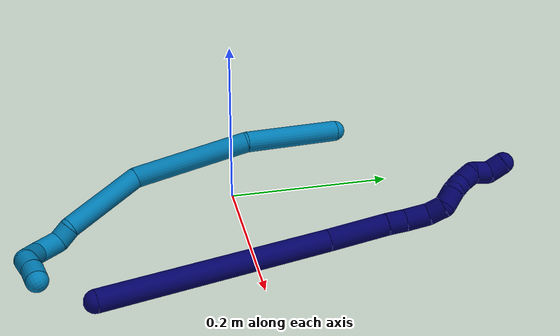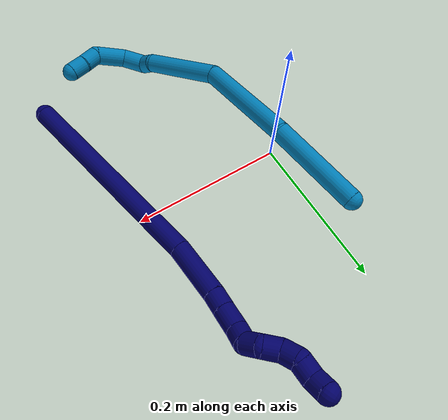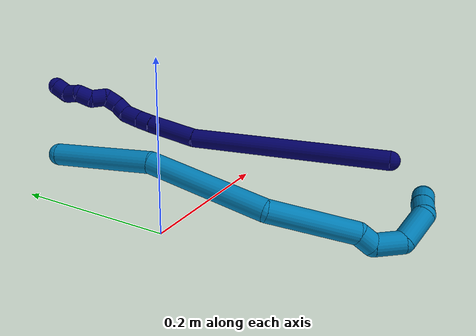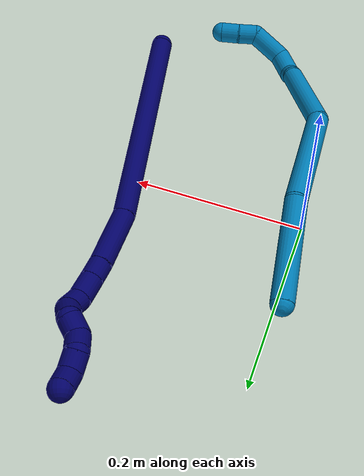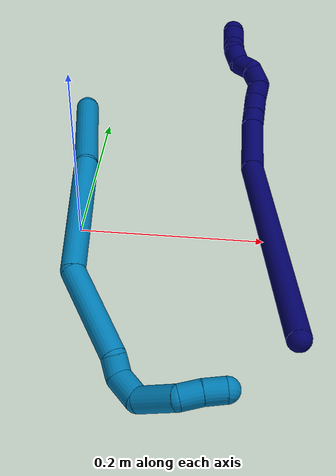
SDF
<sdf version="1.7">
 <world name="default">
  <model name="photoneo_s_sensor">
   <static>1</static>
   <pose>0 0 2 1.57079 1.57079 3.14159</pose>
   <link name="link">
    <inertial><mass>0.1</mass></inertial>
    <sensor name="sensor" type="depth">
     <update_rate>30</update_rate>
     <camera>
      <horizontal_fov>1.22</horizontal_fov>
      <image><width>1920</width><height>1200</height><format>B8G8R8</format></image>
      <clip><near>0.1</near><far>4</far></clip>
      <depth_camera><output>points</output></depth_camera>
     </camera>
     <plugin name="camera_plugin" filename="libgazebo_ros_depth_camera.so">
      <baseline>0.2</baseline>
      <alwaysOn>1</alwaysOn>
      <updateRate>0.0</updateRate>
      <cameraName>camera_ir</cameraName>
      <imageTopicName>/camera/color/image_raw</imageTopicName>
      <cameraInfoTopicName>/camera/color/camera_info</cameraInfoTopicName>
      <depthImageTopicName>/camera/depth/image_raw</depthImageTopicName>
      <depthImageCameraInfoTopicName>/camera/depth/camera_info</depthImageCameraInfoTopicName>
      <pointCloudTopicName>/camera/depth/points</pointCloudTopicName>
      <frameName>fr_optical</frameName>
      <pointCloudCutoff>0.1</pointCloudCutoff>
      <pointCloudCutoffMax>2.0</pointCloudCutoffMax>
      <distortionK1>0</distortionK1>
      <distortionK2>0</distortionK2>
      <distortionK3>0</distortionK3>
      <distortionT1>0</distortionT1>
      <distortionT2>0</distortionT2>
      <CxPrime>0</CxPrime>
      <Cx>0</Cx>
      <Cy>0</Cy>
      <focalLength>0</focalLength>
      <hackBaseline>0</hackBaseline>
     </plugin>
    </sensor>
   </link>
  </model>
  <model name="bin">
   <static>1</static>
   <link name="bottom">
    <collision name="collision-bottom">
     <pose>0 0 -0.01 0 -0 0</pose>
     <geometry><box><size>0.8 0.6 0.02</size></box></geometry>
     <surface>
      <friction><ode><mu>100</mu><mu2>100</mu2></ode></friction>
      <contact><collide_bitmask>65535</collide_bitmask></contact>
     </surface>
    </collision>
   </link>
   <link name="west_wall">
    <collision name="collision-west_wall">
     <pose>-0.41 0 0.1 0 -0 0</pose>
     <geometry><box><size>0.02 0.6 0.2</size></box></geometry>
     <surface>
      <friction><ode><mu>100</mu><mu2>100</mu2></ode></friction>
      <contact><collide_bitmask>65535</collide_bitmask></contact>
     </surface>
    </collision>
   </link>
   <link name="east_wall">
    <collision name="collision-east_wall">
     <pose>0.41 0 0.1 0 -0 0</pose>
     <geometry><box><size>0.02 0.6 0.2</size></box></geometry>
     <surface>
      <friction><ode><mu>100</mu><mu2>100</mu2></ode></friction>
      <contact><collide_bitmask>65535</collide_bitmask></contact>
     </surface>
    </collision>
   </link>
   <link name="south_wall">
    <collision name="collision-south_wall">
     <pose>0 -0.31 0.1 0 -0 0</pose>
     <geometry><box><size>0.8 0.02 0.2</size></box></geometry>
     <surface>
      <friction><ode><mu>100</mu><mu2>100</mu2></ode></friction>
      <contact><collide_bitmask>65535</collide_bitmask></contact>
     </surface>
    </collision>
   </link>
   <link name="north_wall">
    <collision name="collision-north_wall">
     <pose>0 0.31 0.1 0 -0 0</pose>
     <geometry><box><size>0.8 0.02 0.2</size></box></geometry>
     <surface>
      <friction><ode><mu>100</mu><mu2>100</mu2></ode></friction>
      <contact><collide_bitmask>65535</collide_bitmask></contact>
     </surface>
    </collision>
   </link>
  </model>
  <model name="7">
   <static>0</static>
   <link name="7">
    <collision name="collision-cylinder-e_1_1_4">
     <pose>-0.002925 0.021666 -0.129054 -2.97526 -0.02235 0.266544</pose>
     <geometry><cylinder><radius>0.0125</radius><length>0.261786</length></cylinder></geometry>
     <surface>
      <friction><ode><mu>1.16</mu><mu2>1.16</mu2><slip1>0</slip1><slip2>0</slip2></ode></friction>
      <contact><ode><kp>1e+06</kp><kd>1</kd><max_vel>0</max_vel><min_depth>0.001</min_depth></ode></contact>
     </surface>
    </collision>
    <visual name="visual-cylinder-e_1_1_4">
     <pose>-0.002925 0.021666 -0.129054 -2.97526 -0.02235 0.266544</pose>
     <geometry><cylinder><radius>0.0125</radius><length>0.261786</length></cylinder></geometry>
     <material><ambient>0.003922 0 0.403922 1</ambient></material>
    </visual>
    <collision name="collision-cylinder-e_2_4_5">
     <pose>-0.011802 0.0538 -0.290298 -2.82718 -0.174046 1.00626</pose>
     <geometry><cylinder><radius>0.0125</radius><length>0.068738</length></cylinder></geometry>
     <surface>
      <friction><ode><mu>1.16</mu><mu2>1.16</mu2><slip1>0</slip1><slip2>0</slip2></ode></friction>
      <contact><ode><kp>1e+06</kp><kd>1</kd><max_vel>0</max_vel><min_depth>0.001</min_depth></ode></contact>
     </surface>
    </collision>
    <visual name="visual-cylinder-e_2_4_5">
     <pose>-0.011802 0.0538 -0.290298 -2.82718 -0.174046 1.00626</pose>
     <geometry><cylinder><radius>0.0125</radius><length>0.068738</length></cylinder></geometry>
     <material><ambient>0.003922 0 0.403922 1</ambient></material>
    </visual>
    <collision name="collision-cylinder-e_3_5_6">
     <pose>-0.019554 0.068221 -0.331988 -2.74723 -0.173204 0.819923</pose>
     <geometry><cylinder><radius>0.0125</radius><length>0.020891</length></cylinder></geometry>
     <surface>
      <friction><ode><mu>1.16</mu><mu2>1.16</mu2><slip1>0</slip1><slip2>0</slip2></ode></friction>
      <contact><ode><kp>1e+06</kp><kd>1</kd><max_vel>0</max_vel><min_depth>0.001</min_depth></ode></contact>
     </surface>
    </collision>
    <visual name="visual-cylinder-e_3_5_6">
     <pose>-0.019554 0.068221 -0.331988 -2.74723 -0.173204 0.819923</pose>
     <geometry><cylinder><radius>0.0125</radius><length>0.020891</length></cylinder></geometry>
     <material><ambient>0.003922 0 0.403922 1</ambient></material>
    </visual>
    <collision name="collision-cylinder-e_4_6_7">
     <pose>-0.024348 0.077114 -0.353578 -2.7538 -0.225377 1.04564</pose>
     <geometry><cylinder><radius>0.0125</radius><length>0.0268</length></cylinder></geometry>
     <surface>
      <friction><ode><mu>1.16</mu><mu2>1.16</mu2><slip1>0</slip1><slip2>0</slip2></ode></friction>
      <contact><ode><kp>1e+06</kp><kd>1</kd><max_vel>0</max_vel><min_depth>0.001</min_depth></ode></contact>
     </surface>
    </collision>
    <visual name="visual-cylinder-e_4_6_7">
     <pose>-0.024348 0.077114 -0.353578 -2.7538 -0.225377 1.04564</pose>
     <geometry><cylinder><radius>0.0125</radius><length>0.0268</length></cylinder></geometry>
     <material><ambient>0.003922 0 0.403922 1</ambient></material>
    </visual>
    <collision name="collision-cylinder-e_5_7_8">
     <pose>-0.032782 0.08603 -0.373133 -2.65198 -0.57146 1.73216</pose>
     <geometry><cylinder><radius>0.0125</radius><length>0.020111</length></cylinder></geometry>
     <surface>
      <friction><ode><mu>1.16</mu><mu2>1.16</mu2><slip1>0</slip1><slip2>0</slip2></ode></friction>
      <contact><ode><kp>1e+06</kp><kd>1</kd><max_vel>0</max_vel><min_depth>0.001</min_depth></ode></contact>
     </surface>
    </collision>
    <visual name="visual-cylinder-e_5_7_8">
     <pose>-0.032782 0.08603 -0.373133 -2.65198 -0.57146 1.73216</pose>
     <geometry><cylinder><radius>0.0125</radius><length>0.020111</length></cylinder></geometry>
     <material><ambient>0.003922 0 0.403922 1</ambient></material>
    </visual>
    <collision name="collision-cylinder-e_6_8_9">
     <pose>-0.044056 0.087332 -0.388388 2.81078 -0.61635 -2.1756</pose>
     <geometry><cylinder><radius>0.0125</radius><length>0.02019</length></cylinder></geometry>
     <surface>
      <friction><ode><mu>1.16</mu><mu2>1.16</mu2><slip1>0</slip1><slip2>0</slip2></ode></friction>
      <contact><ode><kp>1e+06</kp><kd>1</kd><max_vel>0</max_vel><min_depth>0.001</min_depth></ode></contact>
     </surface>
    </collision>
    <visual name="visual-cylinder-e_6_8_9">
     <pose>-0.044056 0.087332 -0.388388 2.81078 -0.61635 -2.1756</pose>
     <geometry><cylinder><radius>0.0125</radius><length>0.02019</length></cylinder></geometry>
     <material><ambient>0.003922 0 0.403922 1</ambient></material>
    </visual>
    <collision name="collision-cylinder-e_7_9_10">
     <pose>-0.049138 0.080117 -0.405469 2.68712 0.072696 0.311973</pose>
     <geometry><cylinder><radius>0.0125</radius><length>0.020735</length></cylinder></geometry>
     <surface>
      <friction><ode><mu>1.16</mu><mu2>1.16</mu2><slip1>0</slip1><slip2>0</slip2></ode></friction>
      <contact><ode><kp>1e+06</kp><kd>1</kd><max_vel>0</max_vel><min_depth>0.001</min_depth></ode></contact>
     </surface>
    </collision>
    <visual name="visual-cylinder-e_7_9_10">
     <pose>-0.049138 0.080117 -0.405469 2.68712 0.072696 0.311973</pose>
     <geometry><cylinder><radius>0.0125</radius><length>0.020735</length></cylinder></geometry>
     <material><ambient>0.003922 0 0.403922 1</ambient></material>
    </visual>
    <collision name="collision-cylinder-e_8_10_11">
     <pose>-0.052178 0.074922 -0.424089 3.07135 -0.385342 -2.78524</pose>
     <geometry><cylinder><radius>0.0125</radius><length>0.020183</length></cylinder></geometry>
     <surface>
      <friction><ode><mu>1.16</mu><mu2>1.16</mu2><slip1>0</slip1><slip2>0</slip2></ode></friction>
      <contact><ode><kp>1e+06</kp><kd>1</kd><max_vel>0</max_vel><min_depth>0.001</min_depth></ode></contact>
     </surface>
    </collision>
    <visual name="visual-cylinder-e_8_10_11">
     <pose>-0.052178 0.074922 -0.424089 3.07135 -0.385342 -2.78524</pose>
     <geometry><cylinder><radius>0.0125</radius><length>0.020183</length></cylinder></geometry>
     <material><ambient>0.003922 0 0.403922 1</ambient></material>
    </visual>
    <collision name="collision-cylinder-e_9_11_12">
     <pose>-0.054694 0.077374 -0.443054 -2.82957 0.125508 -0.760151</pose>
     <geometry><cylinder><radius>0.0125</radius><length>0.020413</length></cylinder></geometry>
     <surface>
      <friction><ode><mu>1.16</mu><mu2>1.16</mu2><slip1>0</slip1><slip2>0</slip2></ode></friction>
      <contact><ode><kp>1e+06</kp><kd>1</kd><max_vel>0</max_vel><min_depth>0.001</min_depth></ode></contact>
     </surface>
    </collision>
    <visual name="visual-cylinder-e_9_11_12">
     <pose>-0.054694 0.077374 -0.443054 -2.82957 0.125508 -0.760151</pose>
     <geometry><cylinder><radius>0.0125</radius><length>0.020413</length></cylinder></geometry>
     <material><ambient>0.003922 0 0.403922 1</ambient></material>
    </visual>
    <collision name="collision-cylinder-e_10_12_2">
     <pose>-0.058387 0.082537 -0.461213 -2.90505 -0.515873 2.2952</pose>
     <geometry><cylinder><radius>0.0125</radius><length>0.020155</length></cylinder></geometry>
     <surface>
      <friction><ode><mu>1.16</mu><mu2>1.16</mu2><slip1>0</slip1><slip2>0</slip2></ode></friction>
      <contact><ode><kp>1e+06</kp><kd>1</kd><max_vel>0</max_vel><min_depth>0.001</min_depth></ode></contact>
     </surface>
    </collision>
    <visual name="visual-cylinder-e_10_12_2">
     <pose>-0.058387 0.082537 -0.461213 -2.90505 -0.515873 2.2952</pose>
     <geometry><cylinder><radius>0.0125</radius><length>0.020155</length></cylinder></geometry>
     <material><ambient>0.003922 0 0.403922 1</ambient></material>
    </visual>
    <collision name="collision-sphere-2">
     <pose>-0.063359 0.084591 -0.469735 0 -0 0</pose>
     <geometry><sphere><radius>0.0125</radius></sphere></geometry>
     <surface>
      <friction><ode><mu>1.16</mu><mu2>1.16</mu2><slip1>0</slip1><slip2>0</slip2></ode></friction>
      <contact><ode><kp>1e+06</kp><kd>1</kd><max_vel>0</max_vel><min_depth>0.001</min_depth></ode></contact>
     </surface>
    </collision>
    <visual name="visual-sphere-2">
     <pose>-0.063359 0.084591 -0.469735 0 -0 0</pose>
     <geometry><sphere><radius>0.0125</radius></sphere></geometry>
     <material><ambient>0.003922 0 0.403922 1</ambient></material>
    </visual>
    <collision name="collision-sphere-12">
     <pose>-0.053416 0.080483 -0.452691 0 -0 0</pose>
     <geometry><sphere><radius>0.0125</radius></sphere></geometry>
     <surface>
      <friction><ode><mu>1.16</mu><mu2>1.16</mu2><slip1>0</slip1><slip2>0</slip2></ode></friction>
      <contact><ode><kp>1e+06</kp><kd>1</kd><max_vel>0</max_vel><min_depth>0.001</min_depth></ode></contact>
     </surface>
    </collision>
    <visual name="visual-sphere-12">
     <pose>-0.053416 0.080483 -0.452691 0 -0 0</pose>
     <geometry><sphere><radius>0.0125</radius></sphere></geometry>
     <material><ambient>0.003922 0 0.403922 1</ambient></material>
    </visual>
    <collision name="collision-sphere-11">
     <pose>-0.055972 0.074266 -0.433417 0 -0 0</pose>
     <geometry><sphere><radius>0.0125</radius></sphere></geometry>
     <surface>
      <friction><ode><mu>1.16</mu><mu2>1.16</mu2><slip1>0</slip1><slip2>0</slip2></ode></friction>
      <contact><ode><kp>1e+06</kp><kd>1</kd><max_vel>0</max_vel><min_depth>0.001</min_depth></ode></contact>
     </surface>
    </collision>
    <visual name="visual-sphere-11">
     <pose>-0.055972 0.074266 -0.433417 0 -0 0</pose>
     <geometry><sphere><radius>0.0125</radius></sphere></geometry>
     <material><ambient>0.003922 0 0.403922 1</ambient></material>
    </visual>
    <collision name="collision-sphere-10">
     <pose>-0.048385 0.075578 -0.41476 0 -0 0</pose>
     <geometry><sphere><radius>0.0125</radius></sphere></geometry>
     <surface>
      <friction><ode><mu>1.16</mu><mu2>1.16</mu2><slip1>0</slip1><slip2>0</slip2></ode></friction>
      <contact><ode><kp>1e+06</kp><kd>1</kd><max_vel>0</max_vel><min_depth>0.001</min_depth></ode></contact>
     </surface>
    </collision>
    <visual name="visual-sphere-10">
     <pose>-0.048385 0.075578 -0.41476 0 -0 0</pose>
     <geometry><sphere><radius>0.0125</radius></sphere></geometry>
     <material><ambient>0.003922 0 0.403922 1</ambient></material>
    </visual>
    <collision name="collision-sphere-9">
     <pose>-0.049891 0.084657 -0.396179 0 -0 0</pose>
     <geometry><sphere><radius>0.0125</radius></sphere></geometry>
     <surface>
      <friction><ode><mu>1.16</mu><mu2>1.16</mu2><slip1>0</slip1><slip2>0</slip2></ode></friction>
      <contact><ode><kp>1e+06</kp><kd>1</kd><max_vel>0</max_vel><min_depth>0.001</min_depth></ode></contact>
     </surface>
    </collision>
    <visual name="visual-sphere-9">
     <pose>-0.049891 0.084657 -0.396179 0 -0 0</pose>
     <geometry><sphere><radius>0.0125</radius></sphere></geometry>
     <material><ambient>0.003922 0 0.403922 1</ambient></material>
    </visual>
    <collision name="collision-sphere-4">
     <pose>-0.00585 0.043332 -0.258108 0 -0 0</pose>
     <geometry><sphere><radius>0.0125</radius></sphere></geometry>
     <surface>
      <friction><ode><mu>1.16</mu><mu2>1.16</mu2><slip1>0</slip1><slip2>0</slip2></ode></friction>
      <contact><ode><kp>1e+06</kp><kd>1</kd><max_vel>0</max_vel><min_depth>0.001</min_depth></ode></contact>
     </surface>
    </collision>
    <visual name="visual-sphere-4">
     <pose>-0.00585 0.043332 -0.258108 0 -0 0</pose>
     <geometry><sphere><radius>0.0125</radius></sphere></geometry>
     <material><ambient>0.003922 0 0.403922 1</ambient></material>
    </visual>
    <collision name="collision-sphere-1">
     <geometry><sphere><radius>0.0125</radius></sphere></geometry>
     <surface>
      <friction><ode><mu>1.16</mu><mu2>1.16</mu2><slip1>0</slip1><slip2>0</slip2></ode></friction>
      <contact><ode><kp>1e+06</kp><kd>1</kd><max_vel>0</max_vel><min_depth>0.001</min_depth></ode></contact>
     </surface>
    </collision>
    <visual name="visual-sphere-1">
     <geometry><sphere><radius>0.0125</radius></sphere></geometry>
     <material><ambient>0.003922 0 0.403922 1</ambient></material>
    </visual>
    <collision name="collision-sphere-8">
     <pose>-0.03822 0.090008 -0.380598 0 -0 0</pose>
     <geometry><sphere><radius>0.0125</radius></sphere></geometry>
     <surface>
      <friction><ode><mu>1.16</mu><mu2>1.16</mu2><slip1>0</slip1><slip2>0</slip2></ode></friction>
      <contact><ode><kp>1e+06</kp><kd>1</kd><max_vel>0</max_vel><min_depth>0.001</min_depth></ode></contact>
     </surface>
    </collision>
    <visual name="visual-sphere-8">
     <pose>-0.03822 0.090008 -0.380598 0 -0 0</pose>
     <geometry><sphere><radius>0.0125</radius></sphere></geometry>
     <material><ambient>0.003922 0 0.403922 1</ambient></material>
    </visual>
    <collision name="collision-sphere-5">
     <pose>-0.017754 0.064268 -0.322488 0 -0 0</pose>
     <geometry><sphere><radius>0.0125</radius></sphere></geometry>
     <surface>
      <friction><ode><mu>1.16</mu><mu2>1.16</mu2><slip1>0</slip1><slip2>0</slip2></ode></friction>
      <contact><ode><kp>1e+06</kp><kd>1</kd><max_vel>0</max_vel><min_depth>0.001</min_depth></ode></contact>
     </surface>
    </collision>
    <visual name="visual-sphere-5">
     <pose>-0.017754 0.064268 -0.322488 0 -0 0</pose>
     <geometry><sphere><radius>0.0125</radius></sphere></geometry>
     <material><ambient>0.003922 0 0.403922 1</ambient></material>
    </visual>
    <collision name="collision-sphere-6">
     <pose>-0.021354 0.072175 -0.341487 0 -0 0</pose>
     <geometry><sphere><radius>0.0125</radius></sphere></geometry>
     <surface>
      <friction><ode><mu>1.16</mu><mu2>1.16</mu2><slip1>0</slip1><slip2>0</slip2></ode></friction>
      <contact><ode><kp>1e+06</kp><kd>1</kd><max_vel>0</max_vel><min_depth>0.001</min_depth></ode></contact>
     </surface>
    </collision>
    <visual name="visual-sphere-6">
     <pose>-0.021354 0.072175 -0.341487 0 -0 0</pose>
     <geometry><sphere><radius>0.0125</radius></sphere></geometry>
     <material><ambient>0.003922 0 0.403922 1</ambient></material>
    </visual>
    <collision name="collision-sphere-7">
     <pose>-0.027343 0.082053 -0.365669 0 -0 0</pose>
     <geometry><sphere><radius>0.0125</radius></sphere></geometry>
     <surface>
      <friction><ode><mu>1.16</mu><mu2>1.16</mu2><slip1>0</slip1><slip2>0</slip2></ode></friction>
      <contact><ode><kp>1e+06</kp><kd>1</kd><max_vel>0</max_vel><min_depth>0.001</min_depth></ode></contact>
     </surface>
    </collision>
    <visual name="visual-sphere-7">
     <pose>-0.027343 0.082053 -0.365669 0 -0 0</pose>
     <geometry><sphere><radius>0.0125</radius></sphere></geometry>
     <material><ambient>0.003922 0 0.403922 1</ambient></material>
    </visual>
    <inertial>
     <pose>-0.017104 0.045543 -0.241604 0 -0 0</pose>
     <mass>0.5</mass>
     <inertia>
      <ixx>0.001889</ixx>
      <ixy>0</ixy>
      <ixz>0</ixz>
      <iyy>-0.001013</iyy>
      <iyz>0</iyz>
      <izz>-0.000254</izz>
     </inertia>
    </inertial>
   </link>
   <pose>0.239098 -0.182177 0.044074 -1.4658 1.47899 -2.65383</pose>
  </model>
  <model name="9">
   <static>0</static>
   <link name="9">
    <collision name="collision-cylinder-e_1_1_4">
     <pose>0.01767 -0.016816 0.053925 0.302287 0.303181 0.046525</pose>
     <geometry><cylinder><radius>0.0125</radius><length>0.118371</length></cylinder></geometry>
     <surface>
      <friction><ode><mu>1.16</mu><mu2>1.16</mu2><slip1>0</slip1><slip2>0</slip2></ode></friction>
      <contact><ode><kp>1e+06</kp><kd>1</kd><max_vel>0</max_vel><min_depth>0.001</min_depth></ode></contact>
     </surface>
    </collision>
    <visual name="visual-cylinder-e_1_1_4">
     <pose>0.01767 -0.016816 0.053925 0.302287 0.303181 0.046525</pose>
     <geometry><cylinder><radius>0.0125</radius><length>0.118371</length></cylinder></geometry>
     <material><ambient>0 0.490196 0.709804 1</ambient></material>
    </visual>
    <collision name="collision-cylinder-e_2_4_5">
     <pose>0.049017 -0.036258 0.176553 0.0382 0.196356 0.003763</pose>
     <geometry><cylinder><radius>0.0125</radius><length>0.1402</length></cylinder></geometry>
     <surface>
      <friction><ode><mu>1.16</mu><mu2>1.16</mu2><slip1>0</slip1><slip2>0</slip2></ode></friction>
      <contact><ode><kp>1e+06</kp><kd>1</kd><max_vel>0</max_vel><min_depth>0.001</min_depth></ode></contact>
     </surface>
    </collision>
    <visual name="visual-cylinder-e_2_4_5">
     <pose>0.049017 -0.036258 0.176553 0.0382 0.196356 0.003763</pose>
     <geometry><cylinder><radius>0.0125</radius><length>0.1402</length></cylinder></geometry>
     <material><ambient>0 0.490196 0.709804 1</ambient></material>
    </visual>
    <collision name="collision-cylinder-e_3_5_6">
     <pose>0.052209 -0.053452 0.292263 0.300527 -0.209894 -0.031893</pose>
     <geometry><cylinder><radius>0.0125</radius><length>0.100635</length></cylinder></geometry>
     <surface>
      <friction><ode><mu>1.16</mu><mu2>1.16</mu2><slip1>0</slip1><slip2>0</slip2></ode></friction>
      <contact><ode><kp>1e+06</kp><kd>1</kd><max_vel>0</max_vel><min_depth>0.001</min_depth></ode></contact>
     </surface>
    </collision>
    <visual name="visual-cylinder-e_3_5_6">
     <pose>0.052209 -0.053452 0.292263 0.300527 -0.209894 -0.031893</pose>
     <geometry><cylinder><radius>0.0125</radius><length>0.100635</length></cylinder></geometry>
     <material><ambient>0 0.490196 0.709804 1</ambient></material>
    </visual>
    <collision name="collision-cylinder-e_4_6_7">
     <pose>0.038082 -0.066991 0.348642 -0.109457 -0.368767 0.020434</pose>
     <geometry><cylinder><radius>0.0125</radius><length>0.020213</length></cylinder></geometry>
     <surface>
      <friction><ode><mu>1.16</mu><mu2>1.16</mu2><slip1>0</slip1><slip2>0</slip2></ode></friction>
      <contact><ode><kp>1e+06</kp><kd>1</kd><max_vel>0</max_vel><min_depth>0.001</min_depth></ode></contact>
     </surface>
    </collision>
    <visual name="visual-cylinder-e_4_6_7">
     <pose>0.038082 -0.066991 0.348642 -0.109457 -0.368767 0.020434</pose>
     <geometry><cylinder><radius>0.0125</radius><length>0.020213</length></cylinder></geometry>
     <material><ambient>0 0.490196 0.709804 1</ambient></material>
    </visual>
    <collision name="collision-cylinder-e_5_7_8">
     <pose>0.032471 -0.075458 0.371467 0.614649 -0.118938 -0.037789</pose>
     <geometry><cylinder><radius>0.0125</radius><length>0.033173</length></cylinder></geometry>
     <surface>
      <friction><ode><mu>1.16</mu><mu2>1.16</mu2><slip1>0</slip1><slip2>0</slip2></ode></friction>
      <contact><ode><kp>1e+06</kp><kd>1</kd><max_vel>0</max_vel><min_depth>0.001</min_depth></ode></contact>
     </surface>
    </collision>
    <visual name="visual-cylinder-e_5_7_8">
     <pose>0.032471 -0.075458 0.371467 0.614649 -0.118938 -0.037789</pose>
     <geometry><cylinder><radius>0.0125</radius><length>0.033173</length></cylinder></geometry>
     <material><ambient>0 0.490196 0.709804 1</ambient></material>
    </visual>
    <collision name="collision-cylinder-e_6_8_9">
     <pose>0.025514 -0.10538 0.389404 1.35481 -0.234206 -0.188694</pose>
     <geometry><cylinder><radius>0.0125</radius><length>0.042994</length></cylinder></geometry>
     <surface>
      <friction><ode><mu>1.16</mu><mu2>1.16</mu2><slip1>0</slip1><slip2>0</slip2></ode></friction>
      <contact><ode><kp>1e+06</kp><kd>1</kd><max_vel>0</max_vel><min_depth>0.001</min_depth></ode></contact>
     </surface>
    </collision>
    <visual name="visual-cylinder-e_6_8_9">
     <pose>0.025514 -0.10538 0.389404 1.35481 -0.234206 -0.188694</pose>
     <geometry><cylinder><radius>0.0125</radius><length>0.042994</length></cylinder></geometry>
     <material><ambient>0 0.490196 0.709804 1</ambient></material>
    </visual>
    <collision name="collision-cylinder-e_7_9_10">
     <pose>0.012538 -0.133463 0.392224 1.78432 -0.7949 -0.959938</pose>
     <geometry><cylinder><radius>0.0125</radius><length>0.02238</length></cylinder></geometry>
     <surface>
      <friction><ode><mu>1.16</mu><mu2>1.16</mu2><slip1>0</slip1><slip2>0</slip2></ode></friction>
      <contact><ode><kp>1e+06</kp><kd>1</kd><max_vel>0</max_vel><min_depth>0.001</min_depth></ode></contact>
     </surface>
    </collision>
    <visual name="visual-cylinder-e_7_9_10">
     <pose>0.012538 -0.133463 0.392224 1.78432 -0.7949 -0.959938</pose>
     <geometry><cylinder><radius>0.0125</radius><length>0.02238</length></cylinder></geometry>
     <material><ambient>0 0.490196 0.709804 1</ambient></material>
    </visual>
    <collision name="collision-cylinder-e_8_10_2">
     <pose>-0.003493 -0.148644 0.390269 1.60991 -0.818521 -0.847471</pose>
     <geometry><cylinder><radius>0.0125</radius><length>0.022034</length></cylinder></geometry>
     <surface>
      <friction><ode><mu>1.16</mu><mu2>1.16</mu2><slip1>0</slip1><slip2>0</slip2></ode></friction>
      <contact><ode><kp>1e+06</kp><kd>1</kd><max_vel>0</max_vel><min_depth>0.001</min_depth></ode></contact>
     </surface>
    </collision>
    <visual name="visual-cylinder-e_8_10_2">
     <pose>-0.003493 -0.148644 0.390269 1.60991 -0.818521 -0.847471</pose>
     <geometry><cylinder><radius>0.0125</radius><length>0.022034</length></cylinder></geometry>
     <material><ambient>0 0.490196 0.709804 1</ambient></material>
    </visual>
    <collision name="collision-sphere-2">
     <pose>-0.011537 -0.156166 0.389975 0 -0 0</pose>
     <geometry><sphere><radius>0.0125</radius></sphere></geometry>
     <surface>
      <friction><ode><mu>1.16</mu><mu2>1.16</mu2><slip1>0</slip1><slip2>0</slip2></ode></friction>
      <contact><ode><kp>1e+06</kp><kd>1</kd><max_vel>0</max_vel><min_depth>0.001</min_depth></ode></contact>
     </surface>
    </collision>
    <visual name="visual-sphere-2">
     <pose>-0.011537 -0.156166 0.389975 0 -0 0</pose>
     <geometry><sphere><radius>0.0125</radius></sphere></geometry>
     <material><ambient>0 0.490196 0.709804 1</ambient></material>
    </visual>
    <collision name="collision-sphere-10">
     <pose>0.004551 -0.141122 0.390563 0 -0 0</pose>
     <geometry><sphere><radius>0.0125</radius></sphere></geometry>
     <surface>
      <friction><ode><mu>1.16</mu><mu2>1.16</mu2><slip1>0</slip1><slip2>0</slip2></ode></friction>
      <contact><ode><kp>1e+06</kp><kd>1</kd><max_vel>0</max_vel><min_depth>0.001</min_depth></ode></contact>
     </surface>
    </collision>
    <visual name="visual-sphere-10">
     <pose>0.004551 -0.141122 0.390563 0 -0 0</pose>
     <geometry><sphere><radius>0.0125</radius></sphere></geometry>
     <material><ambient>0 0.490196 0.709804 1</ambient></material>
    </visual>
    <collision name="collision-sphere-9">
     <pose>0.020525 -0.125804 0.393885 0 -0 0</pose>
     <geometry><sphere><radius>0.0125</radius></sphere></geometry>
     <surface>
      <friction><ode><mu>1.16</mu><mu2>1.16</mu2><slip1>0</slip1><slip2>0</slip2></ode></friction>
      <contact><ode><kp>1e+06</kp><kd>1</kd><max_vel>0</max_vel><min_depth>0.001</min_depth></ode></contact>
     </surface>
    </collision>
    <visual name="visual-sphere-9">
     <pose>0.020525 -0.125804 0.393885 0 -0 0</pose>
     <geometry><sphere><radius>0.0125</radius></sphere></geometry>
     <material><ambient>0 0.490196 0.709804 1</ambient></material>
    </visual>
    <collision name="collision-sphere-4">
     <pose>0.035341 -0.033632 0.10785 0 -0 0</pose>
     <geometry><sphere><radius>0.0125</radius></sphere></geometry>
     <surface>
      <friction><ode><mu>1.16</mu><mu2>1.16</mu2><slip1>0</slip1><slip2>0</slip2></ode></friction>
      <contact><ode><kp>1e+06</kp><kd>1</kd><max_vel>0</max_vel><min_depth>0.001</min_depth></ode></contact>
     </surface>
    </collision>
    <visual name="visual-sphere-4">
     <pose>0.035341 -0.033632 0.10785 0 -0 0</pose>
     <geometry><sphere><radius>0.0125</radius></sphere></geometry>
     <material><ambient>0 0.490196 0.709804 1</ambient></material>
    </visual>
    <collision name="collision-sphere-1">
     <geometry><sphere><radius>0.0125</radius></sphere></geometry>
     <surface>
      <friction><ode><mu>1.16</mu><mu2>1.16</mu2><slip1>0</slip1><slip2>0</slip2></ode></friction>
      <contact><ode><kp>1e+06</kp><kd>1</kd><max_vel>0</max_vel><min_depth>0.001</min_depth></ode></contact>
     </surface>
    </collision>
    <visual name="visual-sphere-1">
     <geometry><sphere><radius>0.0125</radius></sphere></geometry>
     <material><ambient>0 0.490196 0.709804 1</ambient></material>
    </visual>
    <collision name="collision-sphere-8">
     <pose>0.030503 -0.084956 0.384922 0 -0 0</pose>
     <geometry><sphere><radius>0.0125</radius></sphere></geometry>
     <surface>
      <friction><ode><mu>1.16</mu><mu2>1.16</mu2><slip1>0</slip1><slip2>0</slip2></ode></friction>
      <contact><ode><kp>1e+06</kp><kd>1</kd><max_vel>0</max_vel><min_depth>0.001</min_depth></ode></contact>
     </surface>
    </collision>
    <visual name="visual-sphere-8">
     <pose>0.030503 -0.084956 0.384922 0 -0 0</pose>
     <geometry><sphere><radius>0.0125</radius></sphere></geometry>
     <material><ambient>0 0.490196 0.709804 1</ambient></material>
    </visual>
    <collision name="collision-sphere-5">
     <pose>0.062693 -0.038884 0.245256 0 -0 0</pose>
     <geometry><sphere><radius>0.0125</radius></sphere></geometry>
     <surface>
      <friction><ode><mu>1.16</mu><mu2>1.16</mu2><slip1>0</slip1><slip2>0</slip2></ode></friction>
      <contact><ode><kp>1e+06</kp><kd>1</kd><max_vel>0</max_vel><min_depth>0.001</min_depth></ode></contact>
     </surface>
    </collision>
    <visual name="visual-sphere-5">
     <pose>0.062693 -0.038884 0.245256 0 -0 0</pose>
     <geometry><sphere><radius>0.0125</radius></sphere></geometry>
     <material><ambient>0 0.490196 0.709804 1</ambient></material>
    </visual>
    <collision name="collision-sphere-6">
     <pose>0.041725 -0.06802 0.339271 0 -0 0</pose>
     <geometry><sphere><radius>0.0125</radius></sphere></geometry>
     <surface>
      <friction><ode><mu>1.16</mu><mu2>1.16</mu2><slip1>0</slip1><slip2>0</slip2></ode></friction>
      <contact><ode><kp>1e+06</kp><kd>1</kd><max_vel>0</max_vel><min_depth>0.001</min_depth></ode></contact>
     </surface>
    </collision>
    <visual name="visual-sphere-6">
     <pose>0.041725 -0.06802 0.339271 0 -0 0</pose>
     <geometry><sphere><radius>0.0125</radius></sphere></geometry>
     <material><ambient>0 0.490196 0.709804 1</ambient></material>
    </visual>
    <collision name="collision-sphere-7">
     <pose>0.034439 -0.065961 0.358012 0 -0 0</pose>
     <geometry><sphere><radius>0.0125</radius></sphere></geometry>
     <surface>
      <friction><ode><mu>1.16</mu><mu2>1.16</mu2><slip1>0</slip1><slip2>0</slip2></ode></friction>
      <contact><ode><kp>1e+06</kp><kd>1</kd><max_vel>0</max_vel><min_depth>0.001</min_depth></ode></contact>
     </surface>
    </collision>
    <visual name="visual-sphere-7">
     <pose>0.034439 -0.065961 0.358012 0 -0 0</pose>
     <geometry><sphere><radius>0.0125</radius></sphere></geometry>
     <material><ambient>0 0.490196 0.709804 1</ambient></material>
    </visual>
    <inertial>
     <pose>0.034731 -0.054206 0.228073 0 -0 0</pose>
     <mass>0.5</mass>
     <inertia>
      <ixx>0.000469</ixx>
      <ixy>0</ixy>
      <ixz>0</ixz>
      <iyy>0.000454</iyy>
      <iyz>0</iyz>
      <izz>5.4e-05</izz>
     </inertia>
    </inertial>
   </link>
   <pose>-0.011568 0.133524 0.071824 -2.04768 -0.691728 -2.63346</pose>
  </model>
 </world>
</sdf>
